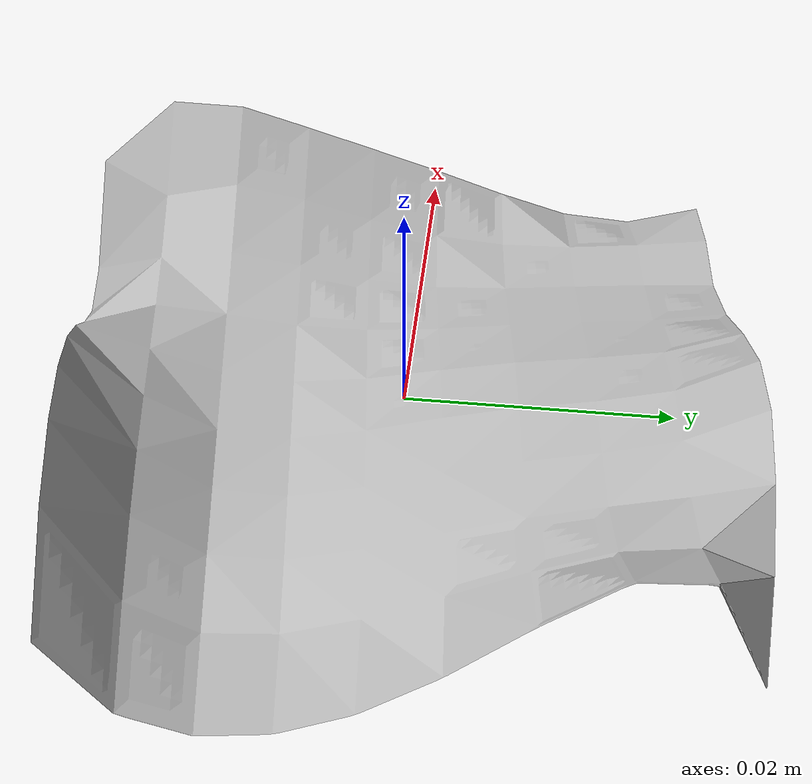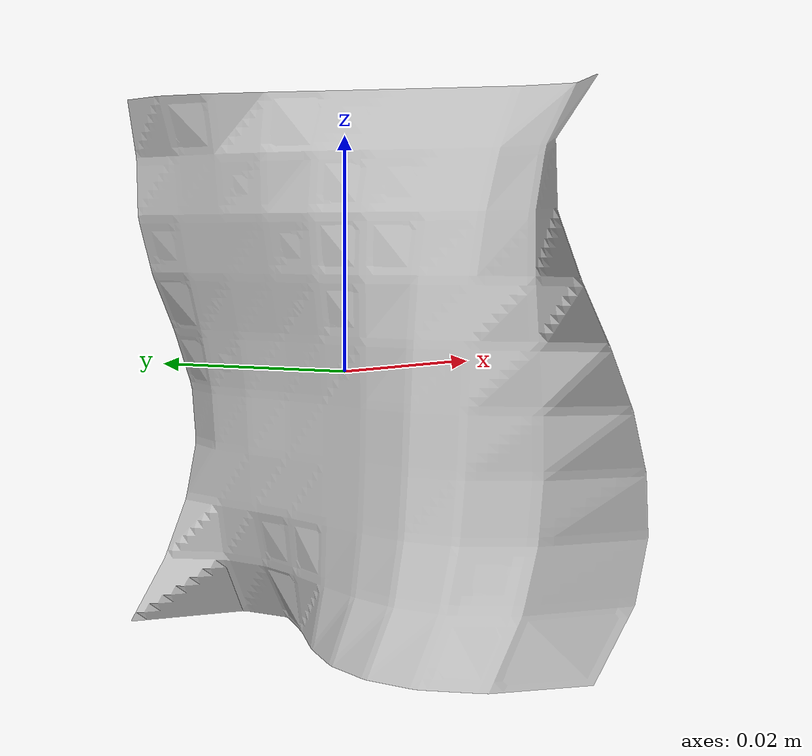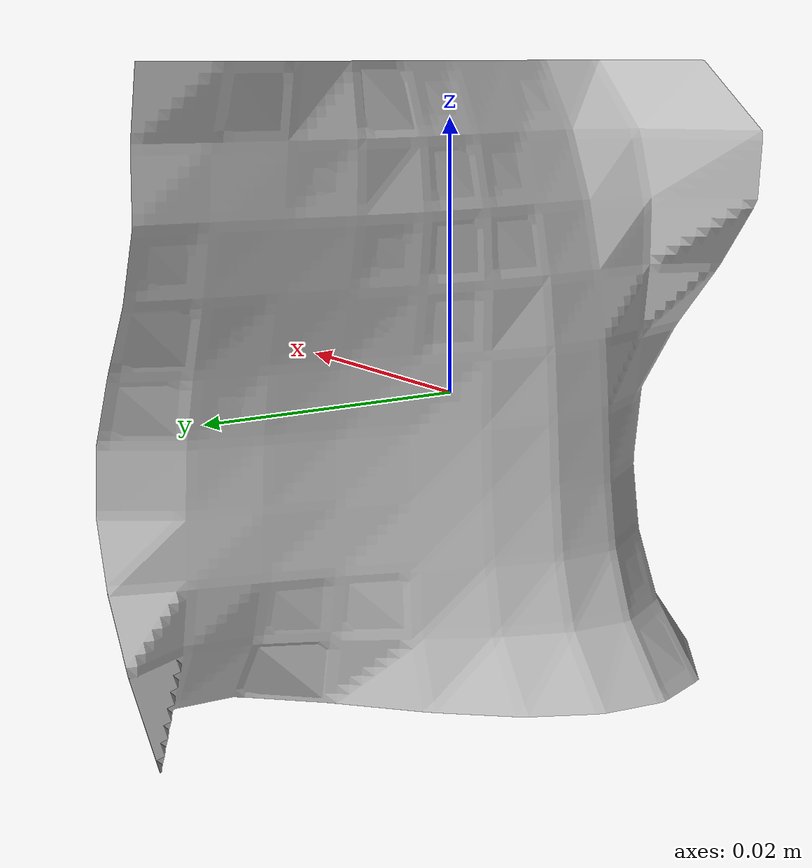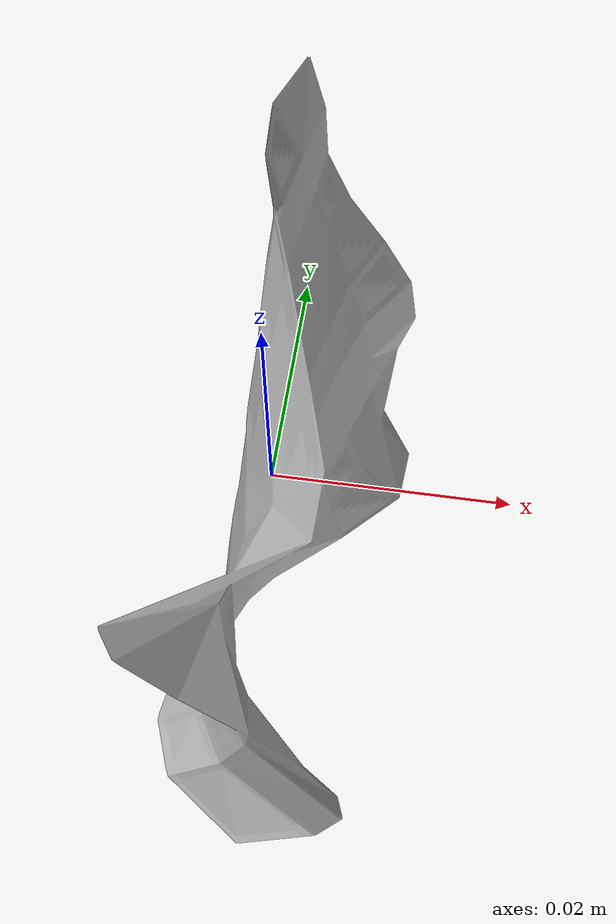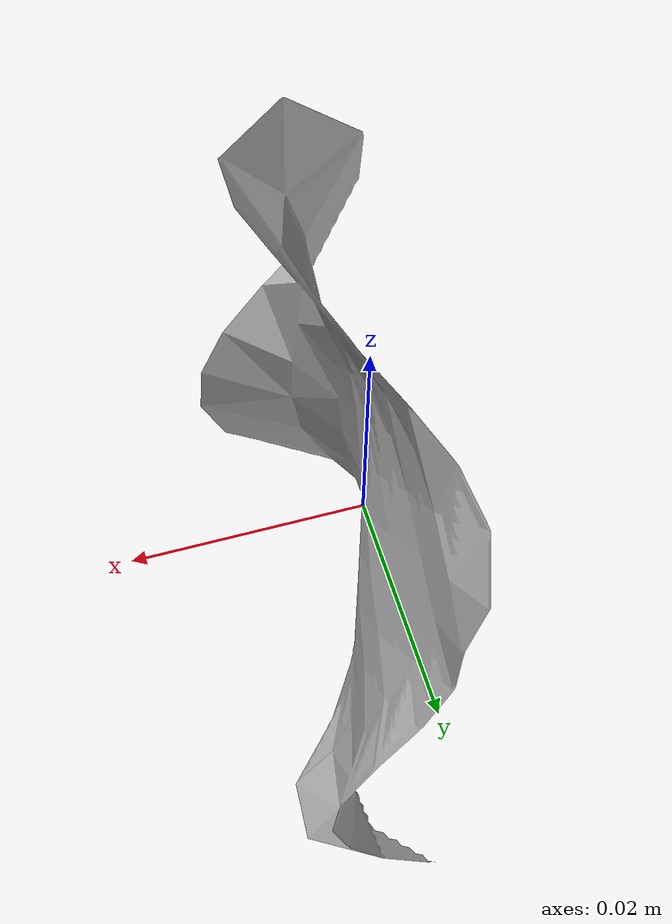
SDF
<?xml version='1.0'?>
<sdf version='1.6'>
  <model name="ID0_130">
  <static>true</static>
    <link name="link">
      <collision name="collision">
        <geometry>
          <mesh>
            <uri>model://test/meshes/ID0_130.dae</uri>
          </mesh>
        </geometry>
      </collision>

      <visual name='visual'>
        <geometry>
          <mesh>
            <uri>model://ID0_130/meshes/ID0_130.dae</uri>
          </mesh>
        </geometry>
      </visual>
    </link>

    </model>
  </sdf>
